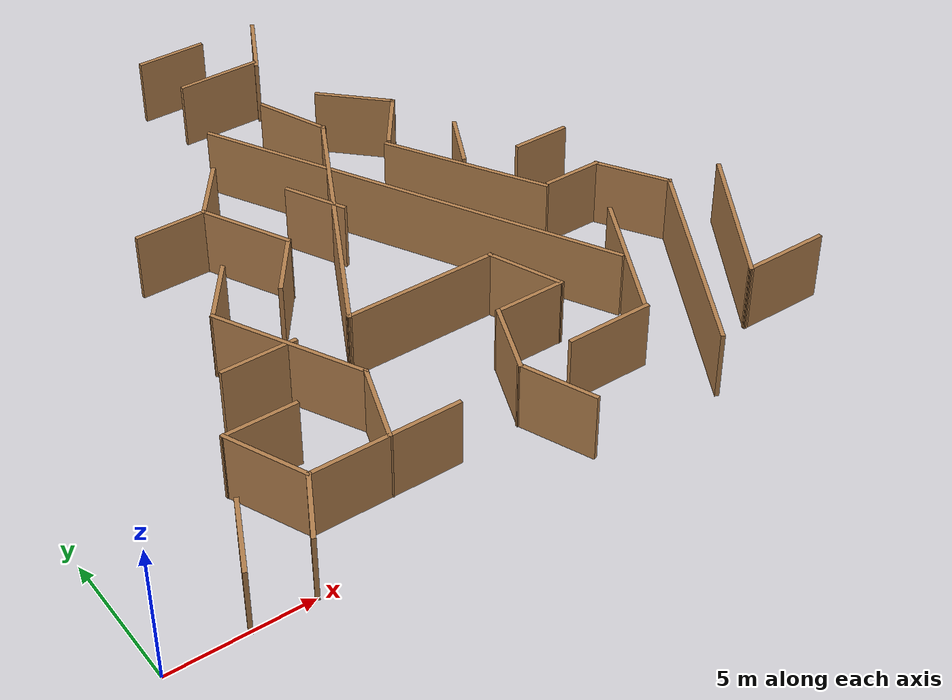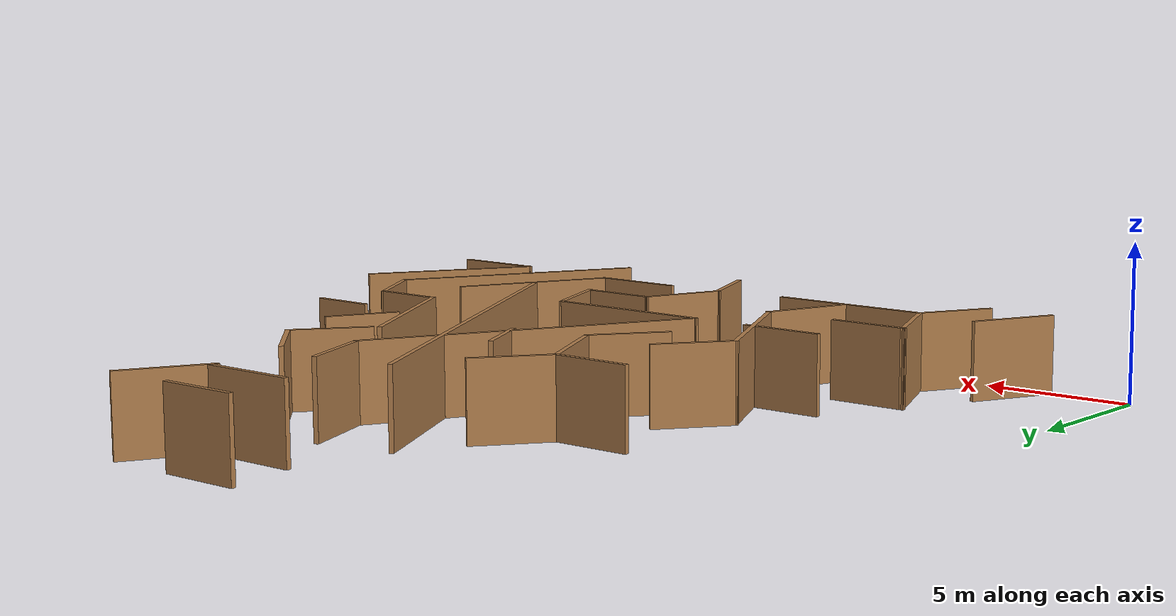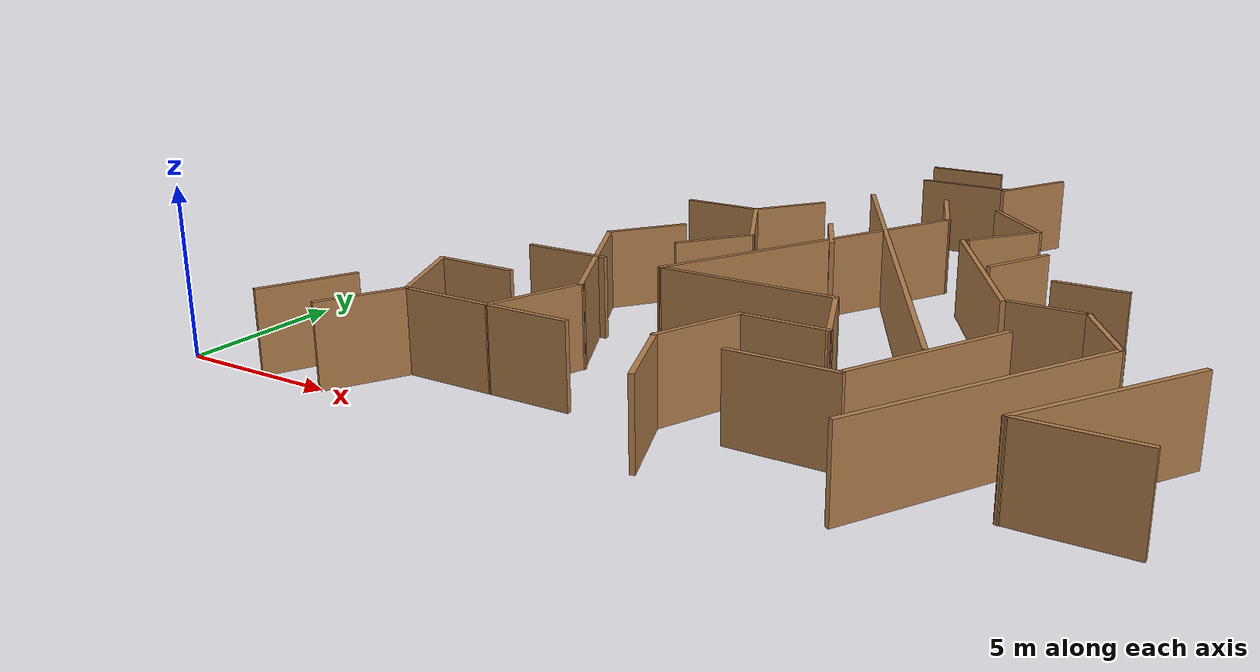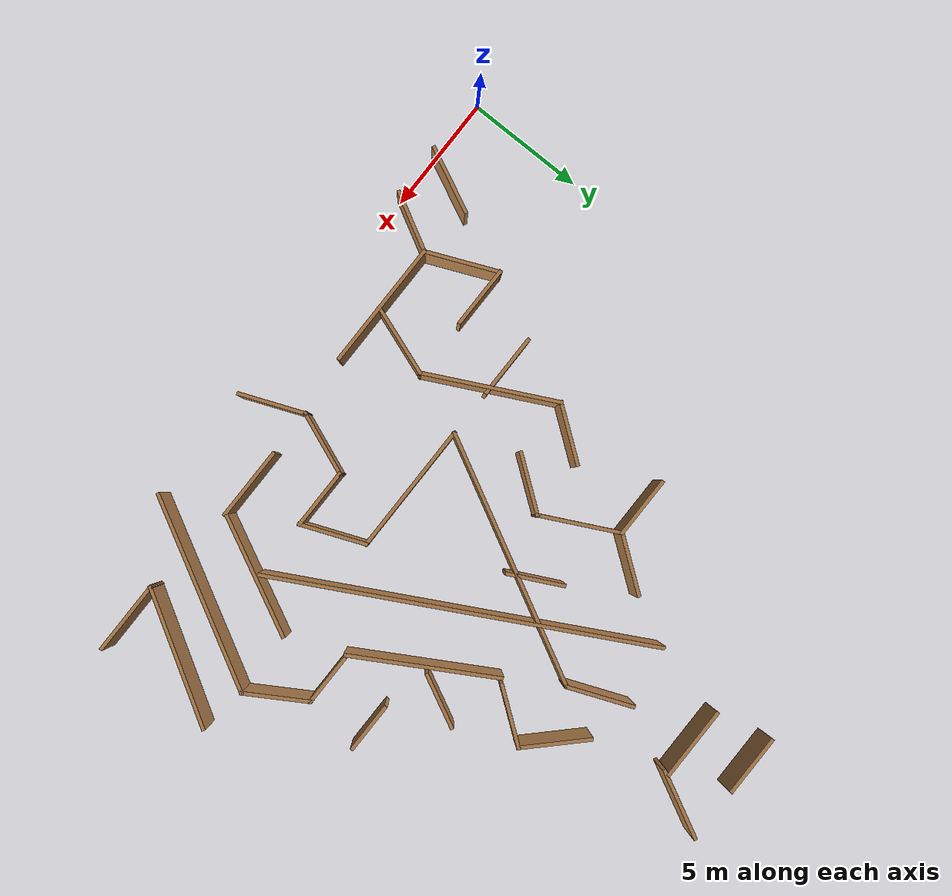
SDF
<?xml version='1.0'?>
<sdf version='1.5'>
  <model name='tr_maze_4'>
    <pose>14.4014 12.2497 0 0 -0 0</pose>
    <link name='Wall_0'>
      <collision name='Wall_0_Collision'>
        <geometry>
          <box>
            <size>2.92308 0.15 2.5</size>
          </box>
        </geometry>
        <pose>0 0 1.25 0 -0 0</pose>
      </collision>
      <visual name='Wall_0_Visual'>
        <pose>0 0 1.25 0 -0 0</pose>
        <geometry>
          <box>
            <size>2.92308 0.15 2.5</size>
          </box>
        </geometry>
        <material>
          <script>
            <uri>file://media/materials/scripts/gazebo.material</uri>
            <name>Gazebo/Wood</name>
          </script>
          <ambient>1 1 1 1</ambient>
        </material>
      </visual>
      <pose>-11.0014 -10.9997 0 0 -0 1.12328</pose>
    </link>
    <link name='Wall_10'>
      <collision name='Wall_10_Collision'>
        <geometry>
          <box>
            <size>3.12321 0.15 2.5</size>
          </box>
        </geometry>
        <pose>0 0 1.25 0 -0 0</pose>
      </collision>
      <visual name='Wall_10_Visual'>
        <pose>0 0 1.25 0 -0 0</pose>
        <geometry>
          <box>
            <size>3.12321 0.15 2.5</size>
          </box>
        </geometry>
        <material>
          <script>
            <uri>file://media/materials/scripts/gazebo.material</uri>
            <name>Gazebo/Wood</name>
          </script>
          <ambient>1 1 1 1</ambient>
        </material>
      </visual>
      <pose>-4.90142 -8.64967 0 0 -0 1.22777</pose>
    </link>
    <link name='Wall_12'>
      <collision name='Wall_12_Collision'>
        <geometry>
          <box>
            <size>5.74017 0.15 2.5</size>
          </box>
        </geometry>
        <pose>0 0 1.25 0 -0 0</pose>
      </collision>
      <visual name='Wall_12_Visual'>
        <pose>0 0 1.25 0 -0 0</pose>
        <geometry>
          <box>
            <size>5.74017 0.15 2.5</size>
          </box>
        </geometry>
        <material>
          <script>
            <uri>file://media/materials/scripts/gazebo.material</uri>
            <name>Gazebo/Wood</name>
          </script>
          <ambient>0.996078 0.47451 0.0196078 1</ambient>
        </material>
      </visual>
      <pose>-5.65142 -4.74967 0 0 -0 2.03444</pose>
    </link>
    <link name='Wall_14'>
      <collision name='Wall_14_Collision'>
        <geometry>
          <box>
            <size>2.75 0.15 2.5</size>
          </box>
        </geometry>
        <pose>0 0 1.25 0 -0 0</pose>
      </collision>
      <visual name='Wall_14_Visual'>
        <pose>0 0 1.25 0 -0 0</pose>
        <geometry>
          <box>
            <size>2.75 0.15 2.5</size>
          </box>
        </geometry>
        <material>
          <script>
            <uri>file://media/materials/scripts/gazebo.material</uri>
            <name>Gazebo/Wood</name>
          </script>
          <ambient>0.996078 0.47451 0.0196078 1</ambient>
        </material>
      </visual>
      <pose>-6.70142 -4.74967 0 0 -0 3.14159</pose>
    </link>
    <link name='Wall_16'>
      <collision name='Wall_16_Collision'>
        <geometry>
          <box>
            <size>2.65 0.15 2.5</size>
          </box>
        </geometry>
        <pose>0 0 1.25 0 -0 0</pose>
      </collision>
      <visual name='Wall_16_Visual'>
        <pose>0 0 1.25 0 -0 0</pose>
        <geometry>
          <box>
            <size>2.65 0.15 2.5</size>
          </box>
        </geometry>
        <material>
          <script>
            <uri>file://media/materials/scripts/gazebo.material</uri>
            <name>Gazebo/Wood</name>
          </script>
          <ambient>0.996078 0.47451 0.0196078 1</ambient>
        </material>
      </visual>
      <pose>-6.15142 -1.24967 0 0 -0 0.927295</pose>
    </link>
    <link name='Wall_18'>
      <collision name='Wall_18_Collision'>
        <geometry>
          <box>
            <size>2.65 0.15 2.5</size>
          </box>
        </geometry>
        <pose>0 0 1.25 0 -0 0</pose>
      </collision>
      <visual name='Wall_18_Visual'>
        <pose>0 0 1.25 0 -0 0</pose>
        <geometry>
          <box>
            <size>2.65 0.15 2.5</size>
          </box>
        </geometry>
        <material>
          <script>
            <uri>file://media/materials/scripts/gazebo.material</uri>
            <name>Gazebo/Wood</name>
          </script>
          <ambient>0.996078 0.47451 0.0196078 1</ambient>
        </material>
      </visual>
      <pose>-3.65142 -1.24967 0 0 -0 0.927295</pose>
    </link>
    <link name='Wall_2'>
      <collision name='Wall_2_Collision'>
        <geometry>
          <box>
            <size>2.65599 0.15 2.5</size>
          </box>
        </geometry>
        <pose>0 0 1.25 0 -0 0</pose>
      </collision>
      <visual name='Wall_2_Visual'>
        <pose>0 0 1.25 0 -0 0</pose>
        <geometry>
          <box>
            <size>2.65599 0.15 2.5</size>
          </box>
        </geometry>
        <material>
          <script>
            <uri>file://media/materials/scripts/gazebo.material</uri>
            <name>Gazebo/Wood</name>
          </script>
          <ambient>1 1 1 1</ambient>
        </material>
      </visual>
      <pose>-8.80142 -11.1497 0 0 -0 1.07145</pose>
    </link>
    <link name='Wall_20'>
      <collision name='Wall_20_Collision'>
        <geometry>
          <box>
            <size>3.5041 0.15 2.5</size>
          </box>
        </geometry>
        <pose>0 0 1.25 0 -0 0</pose>
      </collision>
      <visual name='Wall_20_Visual'>
        <pose>0 0 1.25 0 -0 0</pose>
        <geometry>
          <box>
            <size>3.5041 0.15 2.5</size>
          </box>
        </geometry>
        <material>
          <script>
            <uri>file://media/materials/scripts/gazebo.material</uri>
            <name>Gazebo/Wood</name>
          </script>
          <ambient>0.996078 0.47451 0.0196078 1</ambient>
        </material>
      </visual>
      <pose>-3.65142 1.25033 0 0 -0 2.03444</pose>
    </link>
    <link name='Wall_22'>
      <collision name='Wall_22_Collision'>
        <geometry>
          <box>
            <size>2.65 0.15 2.5</size>
          </box>
        </geometry>
        <pose>0 0 1.25 0 -0 0</pose>
      </collision>
      <visual name='Wall_22_Visual'>
        <pose>0 0 1.25 0 -0 0</pose>
        <geometry>
          <box>
            <size>2.65 0.15 2.5</size>
          </box>
        </geometry>
        <material>
          <script>
            <uri>file://media/materials/scripts/gazebo.material</uri>
            <name>Gazebo/Wood</name>
          </script>
          <ambient>0.996078 0.47451 0.0196078 1</ambient>
        </material>
      </visual>
      <pose>-3.65142 3.75034 0 0 -0 0.927295</pose>
    </link>
    <link name='Wall_24'>
      <collision name='Wall_24_Collision'>
        <geometry>
          <box>
            <size>2.65 0.15 2.5</size>
          </box>
        </geometry>
        <pose>0 0 1.25 0 -0 0</pose>
      </collision>
      <visual name='Wall_24_Visual'>
        <pose>0 0 1.25 0 -0 0</pose>
        <geometry>
          <box>
            <size>2.65 0.15 2.5</size>
          </box>
        </geometry>
        <material>
          <script>
            <uri>file://media/materials/scripts/gazebo.material</uri>
            <name>Gazebo/Wood</name>
          </script>
          <ambient>0.996078 0.47451 0.0196078 1</ambient>
        </material>
      </visual>
      <pose>-5.65142 2.75034 0 0 -0 3.14159</pose>
    </link>
    <link name='Wall_26'>
      <collision name='Wall_26_Collision'>
        <geometry>
          <box>
            <size>2.84258 0.15 2.5</size>
          </box>
        </geometry>
        <pose>0 0 1.25 0 -0 0</pose>
      </collision>
      <visual name='Wall_26_Visual'>
        <pose>0 0 1.25 0 -0 0</pose>
        <geometry>
          <box>
            <size>2.84258 0.15 2.5</size>
          </box>
        </geometry>
        <material>
          <script>
            <uri>file://media/materials/scripts/gazebo.material</uri>
            <name>Gazebo/Wood</name>
          </script>
          <ambient>1 1 1 1</ambient>
        </material>
      </visual>
      <pose>0.098585 -10.9997 0 0 -0 1.9513</pose>
    </link>
    <link name='Wall_28'>
      <collision name='Wall_28_Collision'>
        <geometry>
          <box>
            <size>2.84258 0.15 2.5</size>
          </box>
        </geometry>
        <pose>0 0 1.25 0 -0 0</pose>
      </collision>
      <visual name='Wall_28_Visual'>
        <pose>0 0 1.25 0 -0 0</pose>
        <geometry>
          <box>
            <size>2.84258 0.15 2.5</size>
          </box>
        </geometry>
        <material>
          <script>
            <uri>file://media/materials/scripts/gazebo.material</uri>
            <name>Gazebo/Wood</name>
          </script>
          <ambient>1 1 1 1</ambient>
        </material>
      </visual>
      <pose>0.098585 -8.49967 0 0 -0 1.19029</pose>
    </link>
    <link name='Wall_30'>
      <collision name='Wall_30_Collision'>
        <geometry>
          <box>
            <size>2.65 0.15 2.5</size>
          </box>
        </geometry>
        <pose>0 0 1.25 0 -0 0</pose>
      </collision>
      <visual name='Wall_30_Visual'>
        <pose>0 0 1.25 0 -0 0</pose>
        <geometry>
          <box>
            <size>2.65 0.15 2.5</size>
          </box>
        </geometry>
        <material>
          <script>
            <uri>file://media/materials/scripts/gazebo.material</uri>
            <name>Gazebo/Wood</name>
          </script>
          <ambient>1 1 1 1</ambient>
        </material>
      </visual>
      <pose>1.84858 -7.24967 0 0 -0 0</pose>
    </link>
    <link name='Wall_32'>
      <collision name='Wall_32_Collision'>
        <geometry>
          <box>
            <size>2.84258 0.15 2.5</size>
          </box>
        </geometry>
        <pose>0 0 1.25 0 -0 0</pose>
      </collision>
      <visual name='Wall_32_Visual'>
        <pose>0 0 1.25 0 -0 0</pose>
        <geometry>
          <box>
            <size>2.84258 0.15 2.5</size>
          </box>
        </geometry>
        <material>
          <script>
            <uri>file://media/materials/scripts/gazebo.material</uri>
            <name>Gazebo/Wood</name>
          </script>
          <ambient>1 1 1 1</ambient>
        </material>
      </visual>
      <pose>2.59858 -5.99967 0 0 -0 1.9513</pose>
    </link>
    <link name='Wall_34'>
      <collision name='Wall_34_Collision'>
        <geometry>
          <box>
            <size>5.65 0.15 2.5</size>
          </box>
        </geometry>
        <pose>0 0 1.25 0 -0 0</pose>
      </collision>
      <visual name='Wall_34_Visual'>
        <pose>0 0 1.25 0 -0 0</pose>
        <geometry>
          <box>
            <size>5.65 0.15 2.5</size>
          </box>
        </geometry>
        <material>
          <script>
            <uri>file://media/materials/scripts/gazebo.material</uri>
            <name>Gazebo/Wood</name>
          </script>
          <ambient>1 1 1 1</ambient>
        </material>
      </visual>
      <pose>-0.651415 -4.74967 0 0 -0 3.14159</pose>
    </link>
    <link name='Wall_36'>
      <collision name='Wall_36_Collision'>
        <geometry>
          <box>
            <size>10.8855 0.15 2.5</size>
          </box>
        </geometry>
        <pose>0 0 1.25 0 -0 0</pose>
      </collision>
      <visual name='Wall_36_Visual'>
        <pose>0 0 1.25 0 -0 0</pose>
        <geometry>
          <box>
            <size>10.8855 0.15 2.5</size>
          </box>
        </geometry>
        <material>
          <script>
            <uri>file://media/materials/scripts/gazebo.material</uri>
            <name>Gazebo/Wood</name>
          </script>
          <ambient>0.996078 0.47451 0.0196078 1</ambient>
        </material>
      </visual>
      <pose>-0.901415 0.000335 0 0 -0 1.08632</pose>
    </link>
    <link name='Wall_38'>
      <collision name='Wall_38_Collision'>
        <geometry>
          <box>
            <size>2.38607 0.15 2.5</size>
          </box>
        </geometry>
        <pose>0 0 1.25 0 -0 0</pose>
      </collision>
      <visual name='Wall_38_Visual'>
        <pose>0 0 1.25 0 -0 0</pose>
        <geometry>
          <box>
            <size>2.38607 0.15 2.5</size>
          </box>
        </geometry>
        <material>
          <script>
            <uri>file://media/materials/scripts/gazebo.material</uri>
            <name>Gazebo/Wood</name>
          </script>
          <ambient>0.996078 0.47451 0.0196078 1</ambient>
        </material>
      </visual>
      <pose>-0.901415 1.25033 0 0 -0 2.03444</pose>
    </link>
    <link name='Wall_4'>
      <collision name='Wall_4_Collision'>
        <geometry>
          <box>
            <size>5.45 0.15 2.5</size>
          </box>
        </geometry>
        <pose>0 0 1.25 0 -0 0</pose>
      </collision>
      <visual name='Wall_4_Visual'>
        <pose>0 0 1.25 0 -0 0</pose>
        <geometry>
          <box>
            <size>5.45 0.15 2.5</size>
          </box>
        </geometry>
        <material>
          <script>
            <uri>file://media/materials/scripts/gazebo.material</uri>
            <name>Gazebo/Wood</name>
          </script>
          <ambient>1 1 1 1</ambient>
        </material>
      </visual>
      <pose>-5.55142 -10.0497 0 0 -0 0</pose>
    </link>
    <link name='Wall_40'>
      <collision name='Wall_40_Collision'>
        <geometry>
          <box>
            <size>2.84258 0.15 2.5</size>
          </box>
        </geometry>
        <pose>0 0 1.25 0 -0 0</pose>
      </collision>
      <visual name='Wall_40_Visual'>
        <pose>0 0 1.25 0 -0 0</pose>
        <geometry>
          <box>
            <size>2.84258 0.15 2.5</size>
          </box>
        </geometry>
        <material>
          <script>
            <uri>file://media/materials/scripts/gazebo.material</uri>
            <name>Gazebo/Wood</name>
          </script>
          <ambient>0.996078 0.47451 0.0196078 1</ambient>
        </material>
      </visual>
      <pose>1.09858 6.00033 0 0 -0 1.9513</pose>
    </link>
    <link name='Wall_42'>
      <collision name='Wall_42_Collision'>
        <geometry>
          <box>
            <size>16.0324 0.15 2.5</size>
          </box>
        </geometry>
        <pose>0 0 1.25 0 -0 0</pose>
      </collision>
      <visual name='Wall_42_Visual'>
        <pose>0 0 1.25 0 -0 0</pose>
        <geometry>
          <box>
            <size>16.0324 0.15 2.5</size>
          </box>
        </geometry>
        <material>
          <script>
            <uri>file://media/materials/scripts/gazebo.material</uri>
            <name>Gazebo/Wood</name>
          </script>
          <ambient>0.996078 0.47451 0.0196078 1</ambient>
        </material>
      </visual>
      <pose>1.84858 -0.249665 0 0 -0 2.06261</pose>
    </link>
    <link name='Wall_44'>
      <collision name='Wall_44_Collision'>
        <geometry>
          <box>
            <size>5.29296 0.15 2.5</size>
          </box>
        </geometry>
        <pose>0 0 1.25 0 -0 0</pose>
      </collision>
      <visual name='Wall_44_Visual'>
        <pose>0 0 1.25 0 -0 0</pose>
        <geometry>
          <box>
            <size>5.29296 0.15 2.5</size>
          </box>
        </geometry>
        <material>
          <script>
            <uri>file://media/materials/scripts/gazebo.material</uri>
            <name>Gazebo/Wood</name>
          </script>
          <ambient>1 1 1 1</ambient>
        </material>
      </visual>
      <pose>5.74858 -7.34966 0 0 -0 1.10715</pose>
    </link>
    <link name='Wall_46'>
      <collision name='Wall_46_Collision'>
        <geometry>
          <box>
            <size>3.15 0.15 2.5</size>
          </box>
        </geometry>
        <pose>0 0 1.25 0 -0 0</pose>
      </collision>
      <visual name='Wall_46_Visual'>
        <pose>0 0 1.25 0 -0 0</pose>
        <geometry>
          <box>
            <size>3.15 0.15 2.5</size>
          </box>
        </geometry>
        <material>
          <script>
            <uri>file://media/materials/scripts/gazebo.material</uri>
            <name>Gazebo/Wood</name>
          </script>
          <ambient>1 1 1 1</ambient>
        </material>
      </visual>
      <pose>3.09858 -9.74967 0 0 -0 3.14159</pose>
    </link>
    <link name='Wall_48'>
      <collision name='Wall_48_Collision'>
        <geometry>
          <box>
            <size>8.47406 0.15 2.5</size>
          </box>
        </geometry>
        <pose>0 0 1.25 0 -0 0</pose>
      </collision>
      <visual name='Wall_48_Visual'>
        <pose>0 0 1.25 0 -0 0</pose>
        <geometry>
          <box>
            <size>8.47406 0.15 2.5</size>
          </box>
        </geometry>
        <material>
          <script>
            <uri>file://media/materials/scripts/gazebo.material</uri>
            <name>Gazebo/Wood</name>
          </script>
          <ambient>1 1 1 1</ambient>
        </material>
      </visual>
      <pose>7.59858 -8.59966 0 0 -0 1.06953</pose>
    </link>
    <link name='Wall_50'>
      <collision name='Wall_50_Collision'>
        <geometry>
          <box>
            <size>2.84258 0.15 2.5</size>
          </box>
        </geometry>
        <pose>0 0 1.25 0 -0 0</pose>
      </collision>
      <visual name='Wall_50_Visual'>
        <pose>0 0 1.25 0 -0 0</pose>
        <geometry>
          <box>
            <size>2.84258 0.15 2.5</size>
          </box>
        </geometry>
        <material>
          <script>
            <uri>file://media/materials/scripts/gazebo.material</uri>
            <name>Gazebo/Wood</name>
          </script>
          <ambient>1 1 1 1</ambient>
        </material>
      </visual>
      <pose>8.89858 -3.79967 0 0 -0 2.11759</pose>
    </link>
    <link name='Wall_52'>
      <collision name='Wall_52_Collision'>
        <geometry>
          <box>
            <size>2.25 0.15 2.5</size>
          </box>
        </geometry>
        <pose>0 0 1.25 0 -0 0</pose>
      </collision>
      <visual name='Wall_52_Visual'>
        <pose>0 0 1.25 0 -0 0</pose>
        <geometry>
          <box>
            <size>2.25 0.15 2.5</size>
          </box>
        </geometry>
        <material>
          <script>
            <uri>file://media/materials/scripts/gazebo.material</uri>
            <name>Gazebo/Wood</name>
          </script>
          <ambient>1 1 1 1</ambient>
        </material>
      </visual>
      <pose>7.14858 -2.64966 0 0 -0 3.14159</pose>
    </link>
    <link name='Wall_54'>
      <collision name='Wall_54_Collision'>
        <geometry>
          <box>
            <size>6.25 0.15 2.5</size>
          </box>
        </geometry>
        <pose>0 0 1.25 0 -0 0</pose>
      </collision>
      <visual name='Wall_54_Visual'>
        <pose>0 0 1.25 0 -0 0</pose>
        <geometry>
          <box>
            <size>6.25 0.15 2.5</size>
          </box>
        </geometry>
        <material>
          <script>
            <uri>file://media/materials/scripts/gazebo.material</uri>
            <name>Gazebo/Wood</name>
          </script>
          <ambient>1 1 1 1</ambient>
        </material>
      </visual>
      <pose>4.42709 -0.065034 0 0 -0 2.0944</pose>
    </link>
    <link name='Wall_56'>
      <collision name='Wall_56_Collision'>
        <geometry>
          <box>
            <size>2.65 0.15 2.5</size>
          </box>
        </geometry>
        <pose>0 0 1.25 0 -0 0</pose>
      </collision>
      <visual name='Wall_56_Visual'>
        <pose>0 0 1.25 0 -0 0</pose>
        <geometry>
          <box>
            <size>2.65 0.15 2.5</size>
          </box>
        </geometry>
        <material>
          <script>
            <uri>file://media/materials/scripts/gazebo.material</uri>
            <name>Gazebo/Wood</name>
          </script>
          <ambient>1 1 1 1</ambient>
        </material>
      </visual>
      <pose>3.84858 3.75034 0 0 -0 0.927295</pose>
    </link>
    <link name='Wall_58'>
      <collision name='Wall_58_Collision'>
        <geometry>
          <box>
            <size>2.97843 0.15 2.5</size>
          </box>
        </geometry>
        <pose>0 0 1.25 0 -0 0</pose>
      </collision>
      <visual name='Wall_58_Visual'>
        <pose>0 0 1.25 0 -0 0</pose>
        <geometry>
          <box>
            <size>2.97843 0.15 2.5</size>
          </box>
        </geometry>
        <material>
          <script>
            <uri>file://media/materials/scripts/gazebo.material</uri>
            <name>Gazebo/Wood</name>
          </script>
          <ambient>1 1 1 1</ambient>
        </material>
      </visual>
      <pose>3.59858 5.75033 0 0 -0 2.35619</pose>
    </link>
    <link name='Wall_6'>
      <collision name='Wall_6_Collision'>
        <geometry>
          <box>
            <size>3.19631 0.15 2.5</size>
          </box>
        </geometry>
        <pose>0 0 1.25 0 -0 0</pose>
      </collision>
      <visual name='Wall_6_Visual'>
        <pose>0 0 1.25 0 -0 0</pose>
        <geometry>
          <box>
            <size>3.19631 0.15 2.5</size>
          </box>
        </geometry>
        <material>
          <script>
            <uri>file://media/materials/scripts/gazebo.material</uri>
            <name>Gazebo/Wood</name>
          </script>
          <ambient>1 1 1 1</ambient>
        </material>
      </visual>
      <pose>-8.80142 -8.64967 0 0 -0 1.97569</pose>
    </link>
    <link name='Wall_60'>
      <collision name='Wall_60_Collision'>
        <geometry>
          <box>
            <size>3.15 0.15 2.5</size>
          </box>
        </geometry>
        <pose>0 0 1.25 0 -0 0</pose>
      </collision>
      <visual name='Wall_60_Visual'>
        <pose>0 0 1.25 0 -0 0</pose>
        <geometry>
          <box>
            <size>3.15 0.15 2.5</size>
          </box>
        </geometry>
        <material>
          <script>
            <uri>file://media/materials/scripts/gazebo.material</uri>
            <name>Gazebo/Wood</name>
          </script>
          <ambient>1 1 1 1</ambient>
        </material>
      </visual>
      <pose>10.0986 -10.2497 0 0 -0 3.14159</pose>
    </link>
    <link name='Wall_62'>
      <collision name='Wall_62_Collision'>
        <geometry>
          <box>
            <size>5.98095 0.15 2.5</size>
          </box>
        </geometry>
        <pose>0 0 1.25 0 -0 0</pose>
      </collision>
      <visual name='Wall_62_Visual'>
        <pose>0 0 1.25 0 -0 0</pose>
        <geometry>
          <box>
            <size>5.98095 0.15 2.5</size>
          </box>
        </geometry>
        <material>
          <script>
            <uri>file://media/materials/scripts/gazebo.material</uri>
            <name>Gazebo/Wood</name>
          </script>
          <ambient>1 1 1 1</ambient>
        </material>
      </visual>
      <pose>10.0986 -7.74967 0 0 -0 1.03038</pose>
    </link>
    <link name='Wall_64'>
      <collision name='Wall_64_Collision'>
        <geometry>
          <box>
            <size>2.15 0.15 2.5</size>
          </box>
        </geometry>
        <pose>0 0 1.25 0 -0 0</pose>
      </collision>
      <visual name='Wall_64_Visual'>
        <pose>0 0 1.25 0 -0 0</pose>
        <geometry>
          <box>
            <size>2.15 0.15 2.5</size>
          </box>
        </geometry>
        <material>
          <script>
            <uri>file://media/materials/scripts/gazebo.material</uri>
            <name>Gazebo/Wood</name>
          </script>
          <ambient>1 1 1 1</ambient>
        </material>
      </visual>
      <pose>7.59858 -0.249665 0 0 -0 3.14159</pose>
    </link>
    <link name='Wall_66'>
      <collision name='Wall_66_Collision'>
        <geometry>
          <box>
            <size>2.9678 0.15 2.5</size>
          </box>
        </geometry>
        <pose>0 0 1.25 0 -0 0</pose>
      </collision>
      <visual name='Wall_66_Visual'>
        <pose>0 0 1.25 0 -0 0</pose>
        <geometry>
          <box>
            <size>2.9678 0.15 2.5</size>
          </box>
        </geometry>
        <material>
          <script>
            <uri>file://media/materials/scripts/gazebo.material</uri>
            <name>Gazebo/Wood</name>
          </script>
          <ambient>0.996078 0.47451 0.0196078 1</ambient>
        </material>
      </visual>
      <pose>2.44859 11.0003 0 0 0 -2.05032</pose>
    </link>
    <link name='Wall_68'>
      <collision name='Wall_68_Collision'>
        <geometry>
          <box>
            <size>3.15 0.15 2.5</size>
          </box>
        </geometry>
        <pose>0 0 1.25 0 -0 0</pose>
      </collision>
      <visual name='Wall_68_Visual'>
        <pose>0 0 1.25 0 -0 0</pose>
        <geometry>
          <box>
            <size>3.15 0.15 2.5</size>
          </box>
        </geometry>
        <material>
          <script>
            <uri>file://media/materials/scripts/gazebo.material</uri>
            <name>Gazebo/Wood</name>
          </script>
          <ambient>0.996078 0.47451 0.0196078 1</ambient>
        </material>
      </visual>
      <pose>0.298584 9.95034 0 0 -0 3.14159</pose>
    </link>
    <link name='Wall_70'>
      <collision name='Wall_70_Collision'>
        <geometry>
          <box>
            <size>2.65 0.15 2.5</size>
          </box>
        </geometry>
        <pose>0 0 1.25 0 -0 0</pose>
      </collision>
      <visual name='Wall_70_Visual'>
        <pose>0 0 1.25 0 -0 0</pose>
        <geometry>
          <box>
            <size>2.65 0.15 2.5</size>
          </box>
        </geometry>
        <material>
          <script>
            <uri>file://media/materials/scripts/gazebo.material</uri>
            <name>Gazebo/Wood</name>
          </script>
          <ambient>1 1 1 1</ambient>
        </material>
      </visual>
      <pose>-0.451416 12.2503 0 0 -0 3.14159</pose>
    </link>
    <link name='Wall_72'>
      <collision name='Wall_72_Collision'>
        <geometry>
          <box>
            <size>2.38607 0.15 2.5</size>
          </box>
        </geometry>
        <pose>0 0 1.25 0 -0 0</pose>
      </collision>
      <visual name='Wall_72_Visual'>
        <pose>0 0 1.25 0 -0 0</pose>
        <geometry>
          <box>
            <size>2.38607 0.15 2.5</size>
          </box>
        </geometry>
        <material>
          <script>
            <uri>file://media/materials/scripts/gazebo.material</uri>
            <name>Gazebo/Wood</name>
          </script>
          <ambient>1 1 1 1</ambient>
        </material>
      </visual>
      <pose>5.09858 1.25033 0 0 -0 1.10715</pose>
    </link>
    <link name='Wall_8'>
      <collision name='Wall_8_Collision'>
        <geometry>
          <box>
            <size>2.65 0.15 2.5</size>
          </box>
        </geometry>
        <pose>0 0 1.25 0 -0 0</pose>
      </collision>
      <visual name='Wall_8_Visual'>
        <pose>0 0 1.25 0 -0 0</pose>
        <geometry>
          <box>
            <size>2.65 0.15 2.5</size>
          </box>
        </geometry>
        <material>
          <script>
            <uri>file://media/materials/scripts/gazebo.material</uri>
            <name>Gazebo/Wood</name>
          </script>
          <ambient>1 1 1 1</ambient>
        </material>
      </visual>
      <pose>-8.15142 -7.24967 0 0 -0 0</pose>
    </link>
    <static>1</static>
  </model>
</sdf>
